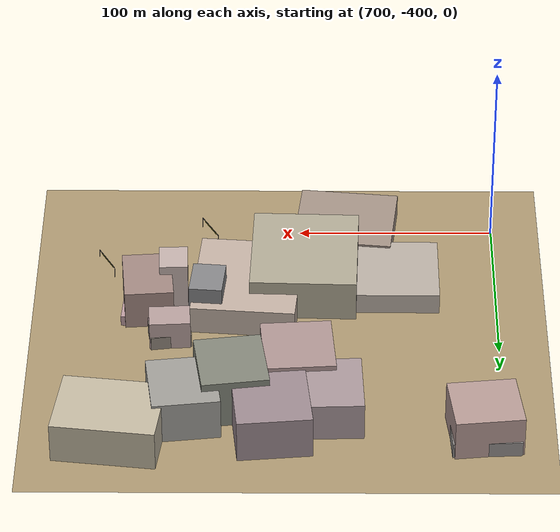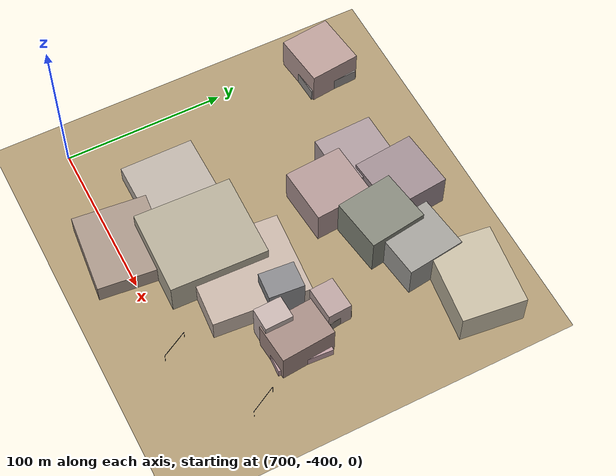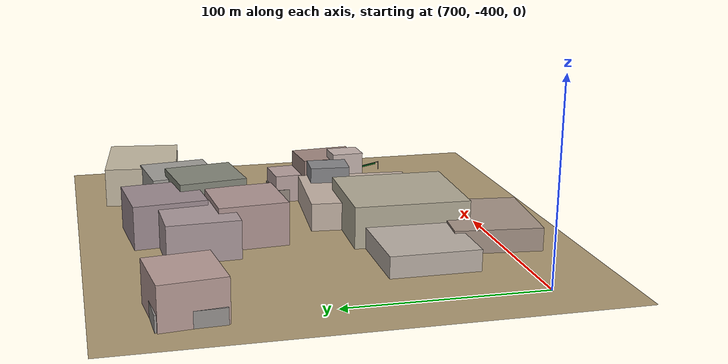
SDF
<sdf version="1.9">
 <world name="crossroad_world">
  <model name="ground_plane">
   <static>true</static>
   <pose>0 0 -0.05 0 0 0</pose>
   <link name="link">
    <collision name="collision">
     <geometry><plane><normal>0 0 1</normal><size>10000 10000</size></plane></geometry>
    </collision>
    <visual name="visual">
     <geometry><plane><normal>0 0 1</normal><size>15000 15000</size></plane></geometry>
     <material><ambient>0.68 0.60 0.45 1</ambient><diffuse>0.68 0.60 0.45 1</diffuse></material>
    </visual>
   </link>
  </model>
  <model name="gantry_99">
   <static>true</static>
   <pose>846.934 -397.499 0 0 0 -1.072</pose>
   <link name="link">
    <visual name="post_l">
     <pose>-8.900 0 2.925 0 0 0</pose>
     <geometry><cylinder><radius>0.1</radius><length>5.85</length></cylinder></geometry>
     <material><ambient>0.30 0.30 0.35 1</ambient><diffuse>0.30 0.30 0.35 1</diffuse></material>
    </visual>
    <visual name="post_r">
     <pose>8.900 0 2.925 0 0 0</pose>
     <geometry><cylinder><radius>0.1</radius><length>5.85</length></cylinder></geometry>
     <material><ambient>0.30 0.30 0.35 1</ambient><diffuse>0.30 0.30 0.35 1</diffuse></material>
    </visual>
    <visual name="beam">
     <pose>0 0 6.000 0 0 0</pose>
     <geometry><box><size>17.800 0.22 0.22</size></box></geometry>
     <material><ambient>0.30 0.30 0.35 1</ambient><diffuse>0.30 0.30 0.35 1</diffuse></material>
    </visual>
    <visual name="sign_border">
     <pose>0 -0.14 5.450 0 0 0</pose>
     <geometry><box><size>12.896 0.04 0.92</size></box></geometry>
     <material><ambient>0.90 0.85 0.10 1</ambient><diffuse>0.90 0.85 0.10 1</diffuse></material>
    </visual>
    <visual name="sign_panel">
     <pose>0 -0.15 5.450 0 0 0</pose>
     <geometry><box><size>12.816 0.05 0.86</size></box></geometry>
     <material><ambient>0.05 0.38 0.10 1</ambient><diffuse>0.05 0.38 0.10 1</diffuse></material>
    </visual>
    <collision name="col_post_l">
     <pose>-8.900 0 2.925 0 0 0</pose>
     <geometry><cylinder><radius>0.1</radius><length>5.85</length></cylinder></geometry>
    </collision>
    <collision name="col_post_r">
     <pose>8.900 0 2.925 0 0 0</pose>
     <geometry><cylinder><radius>0.1</radius><length>5.85</length></cylinder></geometry>
    </collision>
    <collision name="col_beam">
     <pose>0 0 6.000 0 0 0</pose>
     <geometry><box><size>17.800 0.22 0.22</size></box></geometry>
    </collision>
   </link>
  </model>
  <model name="gantry_100">
   <static>true</static>
   <pose>899.615 -368.782 0 0 0 -1.072</pose>
   <link name="link">
    <visual name="post_l">
     <pose>-8.900 0 2.925 0 0 0</pose>
     <geometry><cylinder><radius>0.1</radius><length>5.85</length></cylinder></geometry>
     <material><ambient>0.30 0.30 0.35 1</ambient><diffuse>0.30 0.30 0.35 1</diffuse></material>
    </visual>
    <visual name="post_r">
     <pose>8.900 0 2.925 0 0 0</pose>
     <geometry><cylinder><radius>0.1</radius><length>5.85</length></cylinder></geometry>
     <material><ambient>0.30 0.30 0.35 1</ambient><diffuse>0.30 0.30 0.35 1</diffuse></material>
    </visual>
    <visual name="beam">
     <pose>0 0 6.000 0 0 0</pose>
     <geometry><box><size>17.800 0.22 0.22</size></box></geometry>
     <material><ambient>0.30 0.30 0.35 1</ambient><diffuse>0.30 0.30 0.35 1</diffuse></material>
    </visual>
    <visual name="sign_border">
     <pose>0 -0.14 5.450 0 0 0</pose>
     <geometry><box><size>12.896 0.04 0.92</size></box></geometry>
     <material><ambient>0.90 0.85 0.10 1</ambient><diffuse>0.90 0.85 0.10 1</diffuse></material>
    </visual>
    <visual name="sign_panel">
     <pose>0 -0.15 5.450 0 0 0</pose>
     <geometry><box><size>12.816 0.05 0.86</size></box></geometry>
     <material><ambient>0.05 0.38 0.10 1</ambient><diffuse>0.05 0.38 0.10 1</diffuse></material>
    </visual>
    <collision name="col_post_l">
     <pose>-8.900 0 2.925 0 0 0</pose>
     <geometry><cylinder><radius>0.1</radius><length>5.85</length></cylinder></geometry>
    </collision>
    <collision name="col_post_r">
     <pose>8.900 0 2.925 0 0 0</pose>
     <geometry><cylinder><radius>0.1</radius><length>5.85</length></cylinder></geometry>
    </collision>
    <collision name="col_beam">
     <pose>0 0 6.000 0 0 0</pose>
     <geometry><box><size>17.800 0.22 0.22</size></box></geometry>
    </collision>
   </link>
  </model>
  <model name="building_130">
   <static>true</static>
   <pose>813.374 -235.749 11.321 0 0 0.099</pose>
   <link name="link">
    <visual name="body">
     <geometry><box><size>36.72 38.11 22.64</size></box></geometry>
     <material><ambient>0.62 0.55 0.57 1</ambient><diffuse>0.62 0.55 0.57 1</diffuse></material>
    </visual>
    <collision name="col"><geometry><box><size>36.72 38.11 22.64</size></box></geometry></collision>
   </link>
  </model>
  <model name="building_138">
   <static>true</static>
   <pose>776.048 -397.339 6.049 0 0 -0.104</pose>
   <link name="link">
    <visual name="body">
     <geometry><box><size>50.51 45.34 12.10</size></box></geometry>
     <material><ambient>0.65 0.58 0.53 1</ambient><diffuse>0.65 0.58 0.53 1</diffuse></material>
    </visual>
    <collision name="col"><geometry><box><size>50.51 45.34 12.10</size></box></geometry></collision>
   </link>
  </model>
  <model name="building_139">
   <static>true</static>
   <pose>754.052 -354.612 5.520 0 0 -0.001</pose>
   <link name="link">
    <visual name="body">
     <geometry><box><size>50.16 45.62 11.04</size></box></geometry>
     <material><ambient>0.73 0.69 0.65 1</ambient><diffuse>0.73 0.69 0.65 1</diffuse></material>
    </visual>
    <collision name="col"><geometry><box><size>50.16 45.62 11.04</size></box></geometry></collision>
   </link>
  </model>
  <model name="building_142">
   <static>true</static>
   <pose>710.170 -234.415 3.997 0 0 0.051</pose>
   <link name="link">
    <visual name="body">
     <geometry><box><size>33.83 31.63 7.99</size></box></geometry>
     <material><ambient>0.59 0.57 0.56 1</ambient><diffuse>0.59 0.57 0.56 1</diffuse></material>
    </visual>
    <collision name="col"><geometry><box><size>33.83 31.63 7.99</size></box></geometry></collision>
   </link>
  </model>
  <model name="building_143">
   <static>true</static>
   <pose>710.170 -234.415 10.709 0 0 0.112</pose>
   <link name="link">
    <visual name="body">
     <geometry><box><size>33.83 31.63 21.42</size></box></geometry>
     <material><ambient>0.72 0.61 0.59 1</ambient><diffuse>0.72 0.61 0.59 1</diffuse></material>
    </visual>
    <collision name="col"><geometry><box><size>33.83 31.63 21.42</size></box></geometry></collision>
   </link>
  </model>
  <model name="building_156">
   <static>true</static>
   <pose>846.488 -330.592 11.619 0 0 -0.086</pose>
   <link name="link">
    <visual name="body">
     <geometry><box><size>16.72 21.49 23.24</size></box></geometry>
     <material><ambient>0.53 0.53 0.54 1</ambient><diffuse>0.53 0.53 0.54 1</diffuse></material>
    </visual>
    <collision name="col"><geometry><box><size>16.72 21.49 23.24</size></box></geometry></collision>
   </link>
  </model>
  <model name="building_157">
   <static>true</static>
   <pose>864.117 -344.647 12.618 0 0 0.035</pose>
   <link name="link">
    <visual name="body">
     <geometry><box><size>14.32 17.29 25.24</size></box></geometry>
     <material><ambient>0.77 0.70 0.68 1</ambient><diffuse>0.77 0.70 0.68 1</diffuse></material>
    </visual>
    <collision name="col"><geometry><box><size>14.32 17.29 25.24</size></box></geometry></collision>
   </link>
  </model>
  <model name="building_593">
   <static>true</static>
   <pose>797.495 -357.107 10.912 0 0 -0.030</pose>
   <link name="link">
    <visual name="body">
     <geometry><box><size>54.09 60.00 21.82</size></box></geometry>
     <material><ambient>0.70 0.67 0.59 1</ambient><diffuse>0.70 0.67 0.59 1</diffuse></material>
    </visual>
    <collision name="col"><geometry><box><size>54.09 60.00 21.82</size></box></geometry></collision>
   </link>
  </model>
  <model name="building_594">
   <static>true</static>
   <pose>856.420 -248.155 11.129 0 0 0.126</pose>
   <link name="link">
    <visual name="body">
     <geometry><box><size>33.30 35.90 22.26</size></box></geometry>
     <material><ambient>0.63 0.62 0.60 1</ambient><diffuse>0.63 0.62 0.60 1</diffuse></material>
    </visual>
    <collision name="col"><geometry><box><size>33.30 35.90 22.26</size></box></geometry></collision>
   </link>
  </model>
  <model name="building_609">
   <static>true</static>
   <pose>877.000 -336.516 2.738 0 0 -0.059</pose>
   <link name="link">
    <visual name="body">
     <geometry><box><size>24.69 33.43 5.48</size></box></geometry>
     <material><ambient>0.74 0.61 0.63 1</ambient><diffuse>0.74 0.61 0.63 1</diffuse></material>
    </visual>
    <collision name="col"><geometry><box><size>24.69 33.43 5.48</size></box></geometry></collision>
   </link>
  </model>
  <model name="building_610">
   <static>true</static>
   <pose>877.000 -336.516 10.336 0 0 0.084</pose>
   <link name="link">
    <visual name="body">
     <geometry><box><size>24.69 33.43 20.67</size></box></geometry>
     <material><ambient>0.64 0.54 0.51 1</ambient><diffuse>0.64 0.54 0.51 1</diffuse></material>
    </visual>
    <collision name="col"><geometry><box><size>24.69 33.43 20.67</size></box></geometry></collision>
   </link>
  </model>
  <model name="building_611">
   <static>true</static>
   <pose>865.109 -309.289 7.620 0 0 0.061</pose>
   <link name="link">
    <visual name="body">
     <geometry><box><size>20.53 14.81 15.24</size></box></geometry>
     <material><ambient>0.72 0.63 0.62 1</ambient><diffuse>0.72 0.63 0.62 1</diffuse></material>
    </visual>
    <collision name="col"><geometry><box><size>20.53 14.81 15.24</size></box></geometry></collision>
   </link>
  </model>
  <model name="building_612">
   <static>true</static>
   <pose>865.109 -309.289 3.590 0 0 0.145</pose>
   <link name="link">
    <visual name="body">
     <geometry><box><size>20.53 14.81 7.18</size></box></geometry>
     <material><ambient>0.57 0.53 0.49 1</ambient><diffuse>0.57 0.53 0.49 1</diffuse></material>
    </visual>
    <collision name="col"><geometry><box><size>20.53 14.81 7.18</size></box></geometry></collision>
   </link>
  </model>
  <model name="building_613">
   <static>true</static>
   <pose>826.436 -343.155 7.432 0 0 -0.080</pose>
   <link name="link">
    <visual name="body">
     <geometry><box><size>52.97 60.00 14.86</size></box></geometry>
     <material><ambient>0.77 0.70 0.65 1</ambient><diffuse>0.77 0.70 0.65 1</diffuse></material>
    </visual>
    <collision name="col"><geometry><box><size>52.97 60.00 14.86</size></box></geometry></collision>
   </link>
  </model>
  <model name="building_636">
   <static>true</static>
   <pose>833.088 -259.849 13.070 0 0 0.140</pose>
   <link name="link">
    <visual name="body">
     <geometry><box><size>33.30 35.90 26.14</size></box></geometry>
     <material><ambient>0.52 0.53 0.48 1</ambient><diffuse>0.52 0.53 0.48 1</diffuse></material>
    </visual>
    <collision name="col"><geometry><box><size>33.30 35.90 26.14</size></box></geometry></collision>
   </link>
  </model>
  <model name="building_637">
   <static>true</static>
   <pose>891.490 -231.049 10.565 0 0 -0.122</pose>
   <link name="link">
    <visual name="body">
     <geometry><box><size>51.08 39.22 21.13</size></box></geometry>
     <material><ambient>0.77 0.73 0.64 1</ambient><diffuse>0.77 0.73 0.64 1</diffuse></material>
    </visual>
    <collision name="col"><geometry><box><size>51.08 39.22 21.13</size></box></geometry></collision>
   </link>
  </model>
  <model name="building_687">
   <static>true</static>
   <pose>786.945 -250.009 10.033 0 0 0.035</pose>
   <link name="link">
    <visual name="body">
     <geometry><box><size>35.88 37.09 20.07</size></box></geometry>
     <material><ambient>0.67 0.60 0.61 1</ambient><diffuse>0.67 0.60 0.61 1</diffuse></material>
    </visual>
    <collision name="col"><geometry><box><size>35.88 37.09 20.07</size></box></geometry></collision>
   </link>
  </model>
  <model name="building_688">
   <static>true</static>
   <pose>800.654 -276.390 11.369 0 0 0.074</pose>
   <link name="link">
    <visual name="body">
     <geometry><box><size>35.19 36.16 22.74</size></box></geometry>
     <material><ambient>0.69 0.59 0.58 1</ambient><diffuse>0.69 0.59 0.58 1</diffuse></material>
    </visual>
    <collision name="col"><geometry><box><size>35.19 36.16 22.74</size></box></geometry></collision>
   </link>
  </model>
 </world>
</sdf>
